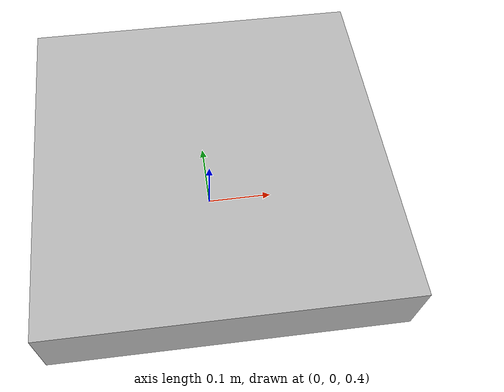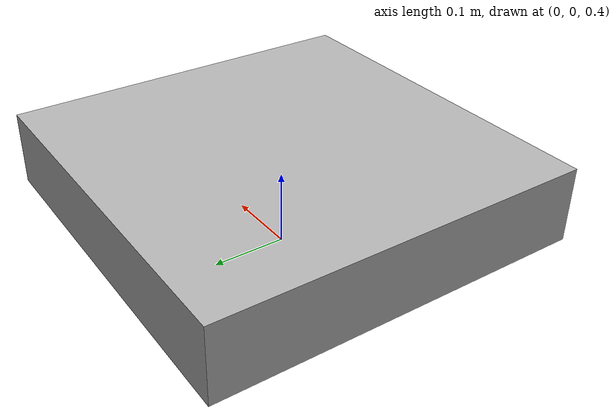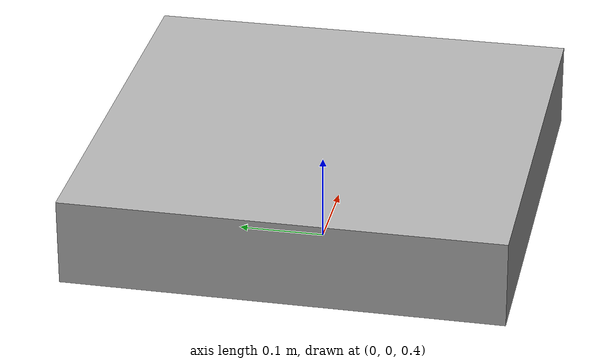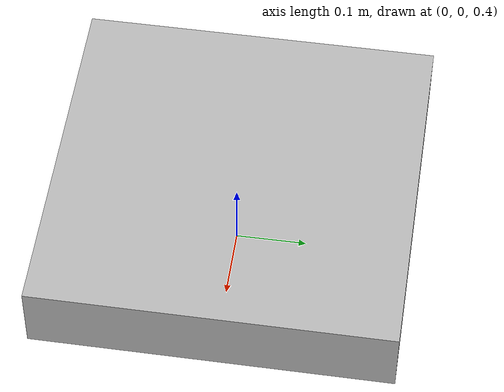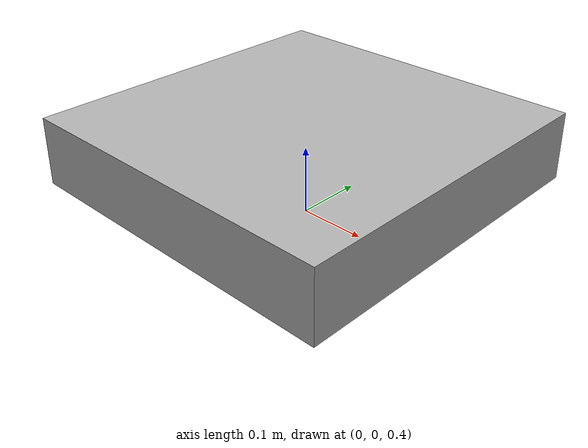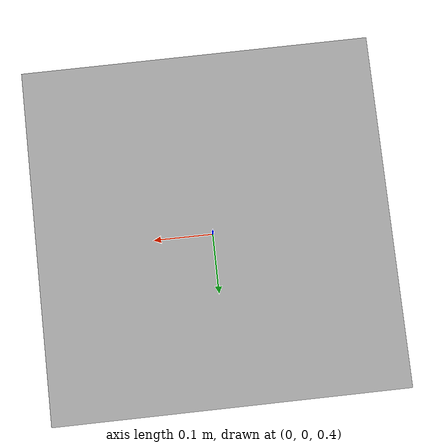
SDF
<sdf version="1.6">
  <world name="default">
    <physics type="ode">
      <max_step_size>0.001</max_step_size>
      <real_time_update_rate>1000</real_time_update_rate>
    </physics>

    <model name="swerve_robot">
      <!-- Robot Link: Base link -->
      <link name="base_link">
        <pose>0 0 0.5 0 0 0</pose>
        <collision name="collision">
          <geometry>
            <box>
              <size>0.5 0.5 0.1</size>
            </box>
          </geometry>
        </collision>
        <visual name="visual">
          <geometry>
            <box>
              <size>0.5 0.5 0.1</size>
            </box>
          </geometry>
          <material>
            <ambient>0.7 0.7 0.7 1</ambient>
            <diffuse>0.7 0.7 0.7 1</diffuse>
          </material>
        </visual>
      </link>

      <!-- Pivot joints (for steering) -->
      <joint name="pivot_joint1" type="revolute">
        <parent>base_link</parent>
        <child>pivot_link1</child>
        <pose>0.25 0.25 0.1 0 0 0</pose>
        <axis>
          <xyz>0 0 1</xyz>
        </axis>
      </joint>

      <joint name="pivot_joint2" type="revolute">
        <parent>base_link</parent>
        <child>pivot_link2</child>
        <pose>0.25 -0.25 0.1 0 0 0</pose>
        <axis>
          <xyz>0 0 1</xyz>
        </axis>
      </joint>

      <joint name="pivot_joint3" type="revolute">
        <parent>base_link</parent>
        <child>pivot_link3</child>
        <pose>-0.25 0.25 0.1 0 0 0</pose>
        <axis>
          <xyz>0 0 1</xyz>
        </axis>
      </joint>

      <joint name="pivot_joint4" type="revolute">
        <parent>base_link</parent>
        <child>pivot_link4</child>
        <pose>-0.25 -0.25 0.1 0 0 0</pose>
        <axis>
          <xyz>0 0 1</xyz>
        </axis>
      </joint>

      <!-- Drive joints (for motors) -->
      <joint name="drive_joint1" type="revolute">
        <parent>pivot_link1</parent>
        <child>drive_link1</child>
        <pose>0 0 0.1 0 0 0</pose>
        <axis>
          <xyz>0 1 0</xyz>
        </axis>
      </joint>

      <joint name="drive_joint2" type="revolute">
        <parent>pivot_link2</parent>
        <child>drive_link2</child>
        <pose>0 0 0.1 0 0 0</pose>
        <axis>
          <xyz>0 1 0</xyz>
        </axis>
      </joint>

      <joint name="drive_joint3" type="revolute">
        <parent>pivot_link3</parent>
        <child>drive_link3</child>
        <pose>0 0 0.1 0 0 0</pose>
        <axis>
          <xyz>0 1 0</xyz>
        </axis>
      </joint>

      <joint name="drive_joint4" type="revolute">
        <parent>pivot_link4</parent>
        <child>drive_link4</child>
        <pose>0 0 0.1 0 0 0</pose>
        <axis>
          <xyz>0 1 0</xyz>
        </axis>
      </joint>

      <!-- Links for the pivots -->
      <link name="pivot_link1">
        <pose>0 0 0 0 0 0</pose>
        <collision name="pivot_collision1">
          <geometry>
            <cylinder>
              <radius>0.05</radius>
              <length>0.1</length>
            </cylinder>
          </geometry>
        </collision>
      </link>

      <link name="pivot_link2">
        <pose>0 0 0 0 0 0</pose>
        <collision name="pivot_collision2">
          <geometry>
            <cylinder>
              <radius>0.05</radius>
              <length>0.1</length>
            </cylinder>
          </geometry>
        </collision>
      </link>

      <link name="pivot_link3">
        <pose>0 0 0 0 0 0</pose>
        <collision name="pivot_collision3">
          <geometry>
            <cylinder>
              <radius>0.05</radius>
              <length>0.1</length>
            </cylinder>
          </geometry>
        </collision>
      </link>

      <link name="pivot_link4">
        <pose>0 0 0 0 0 0</pose>
        <collision name="pivot_collision4">
          <geometry>
            <cylinder>
              <radius>0.05</radius>
              <length>0.1</length>
            </cylinder>
          </geometry>
        </collision>
      </link>

      <!-- Links for the drives -->
      <link name="drive_link1">
        <pose>0 0 0 0 0 0</pose>
        <collision name="drive_collision1">
          <geometry>
            <cylinder>
              <radius>0.05</radius>
              <length>0.1</length>
            </cylinder>
          </geometry>
        </collision>
      </link>

      <link name="drive_link2">
        <pose>0 0 0 0 0 0</pose>
        <collision name="drive_collision2">
          <geometry>
            <cylinder>
              <radius>0.05</radius>
              <length>0.1</length>
            </cylinder>
          </geometry>
        </collision>
      </link>

      <link name="drive_link3">
        <pose>0 0 0 0 0 0</pose>
        <collision name="drive_collision3">
          <geometry>
            <cylinder>
              <radius>0.05</radius>
              <length>0.1</length>
            </cylinder>
          </geometry>
        </collision>
      </link>

      <link name="drive_link4">
        <pose>0 0 0 0 0 0</pose>
        <collision name="drive_collision4">
          <geometry>
            <cylinder>
              <radius>0.05</radius>
              <length>0.1</length>
            </cylinder>
          </geometry>
        </collision>
      </link>

      <!-- Plugin section -->
      <plugin filename="libSwerveDrivePlugin.so" name="swerve_drive::SwerveDrivePlugin">
        <pivotJoints>pivot_joint1 pivot_joint2 pivot_joint3 pivot_joint4</pivotJoints>
        <driveJoints>drive_joint1 drive_joint2 drive_joint3 drive_joint4</driveJoints>
      </plugin>

    </model>
  </world>
</sdf>
